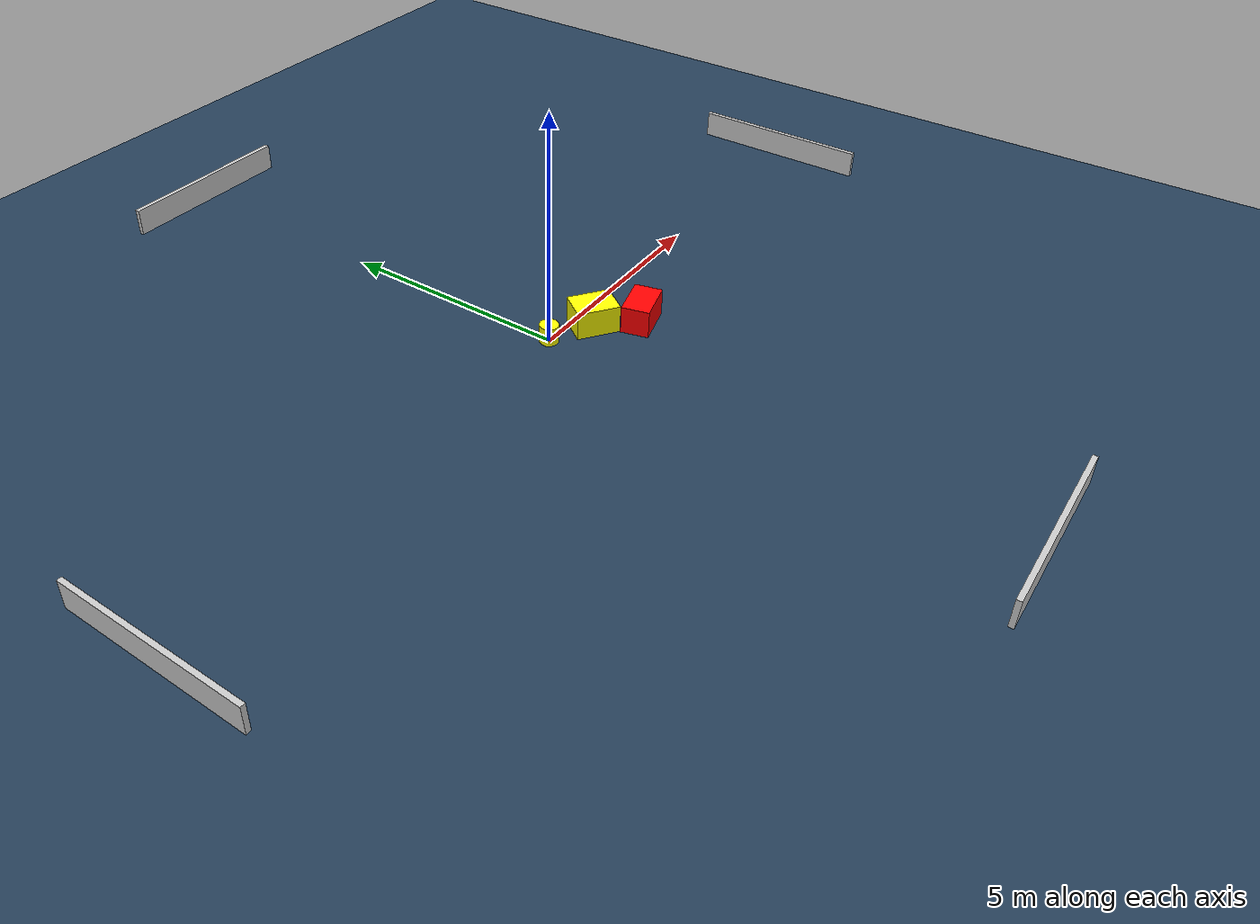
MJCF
<?xml version="1.0" ?>
<mujoco model="generated_environment">
  <option timestep="0.01" integrator="RK4" cone="elliptic"/>
  <default>
    <geom density="1"/>
  </default>
  <asset>
    <texture builtin="gradient" height="3072" name="skybox" rgb1="0.3 0.5 0.7" rgb2="0 0 0" type="skybox" width="512"/>
    <texture builtin="checker" height="300" name="groundplane" rgb1="0.2 0.3 0.4" rgb2="0.1 0.2 0.3" type="2d" width="300"/>
    <material name="groundplane" reflectance="0.2" texrepeat="5 5" texture="groundplane"/>
  </asset>
  <worldbody>
    <light dir="0 0 -1" directional="true" pos="0 0 1.5"/>
    <geom condim="3" friction="0.5 0.005 0.001" material="groundplane" name="floor" pos="0 0 0" size="0 0 0.05" type="plane"/>
    <body name="walls">
      <geom name="wall_1" condim="4" pos="-10.0 0.0 0.3" rgba="0.800000011920929 0.800000011920929 0.800000011920929 1.0" size="0.05 2.0 0.3" type="box"/>
      <geom name="wall_2" condim="4" pos="10.0 0.0 0.3" rgba="0.800000011920929 0.800000011920929 0.800000011920929 1.0" size="0.05 2.0 0.3" type="box"/>
      <geom name="wall_3" condim="4" pos="0.0 -10.0 0.3" rgba="0.800000011920929 0.800000011920929 0.800000011920929 1.0" size="2.0 0.05 0.3" type="box"/>
      <geom name="wall_4" condim="4" pos="0.0 10.0 0.3" rgba="0.800000011920929 0.800000011920929 0.800000011920929 1.0" size="2.0 0.05 0.3" type="box"/>
    </body>
    <body name="robot">
      <joint name="joint_x" type="slide" pos="0 0 0" axis="1 0 0"/>
      <joint name="joint_y" type="slide" pos="0 0 0" axis="0 1 0"/>
      <geom name="robot" type="cylinder" pos="0.0 0.0 0.2" size="0.2 0.2 0.0" mass="5.0" friction="1.0 0.005 0.0001" condim="4" rgba="1.0 1.0 0.0 1.0"/>
    </body>
    <body name="obstacle_1_movable">
      <geom name="obstacle_1_movable" condim="4" pos="0.9263128295776065 -0.4355445221859706 0.3" euler="0 0 234.1994137587801" friction="0.0 0.005 0.001" rgba="1.0 1.0 0.0 1.0" size="0.33883026065117794 0.4543050421006283 0.3" type="box" mass="0.1"/>
      <joint type="free"/>
    </body>
    <body name="obstacle_2_static">
      <geom name="obstacle_2_static" condim="4" pos="1.6008914276674935 -1.1653306478464809 0.3" euler="0 0 284.3452972272211" friction="0.0 0.005 0.001" rgba="1.0 0.0 0.0 1.0" size="0.29407773695738143 0.45484377641431784 0.3" type="box"/>
    </body>
  </worldbody>
  <actuator>
    <motor name="actuator_x" joint="joint_x" gear="1" ctrlrange="-1 1"/>
    <motor name="actuator_y" joint="joint_y" gear="1" ctrlrange="-1 1"/>
  </actuator>
</mujoco>
